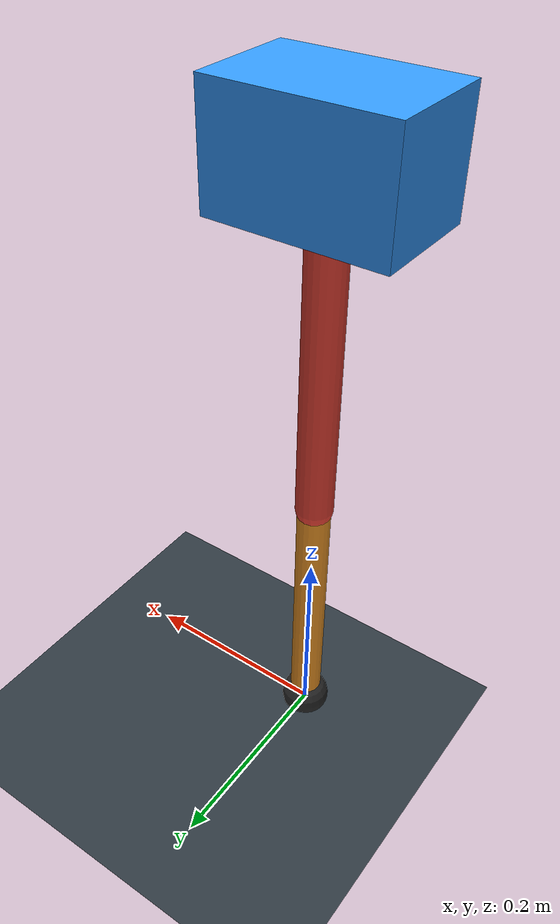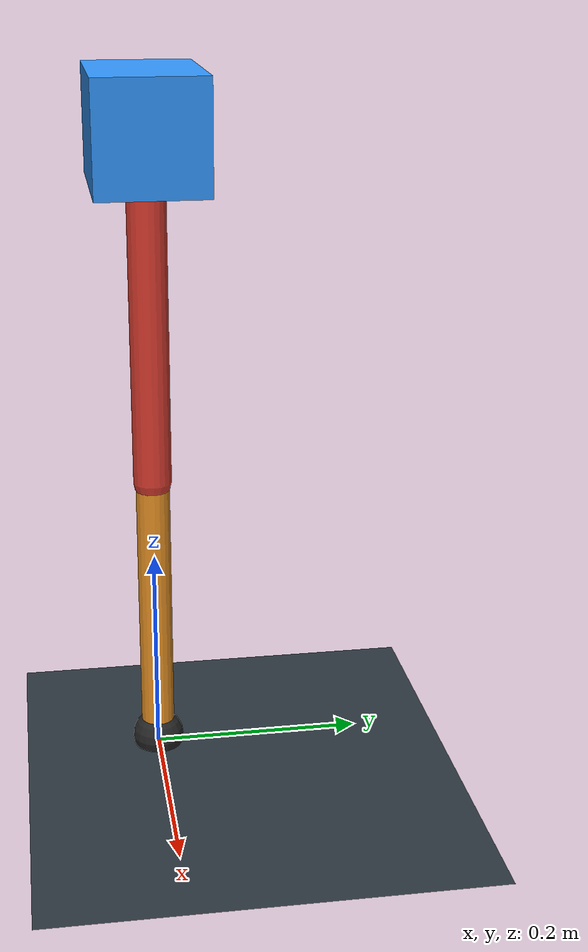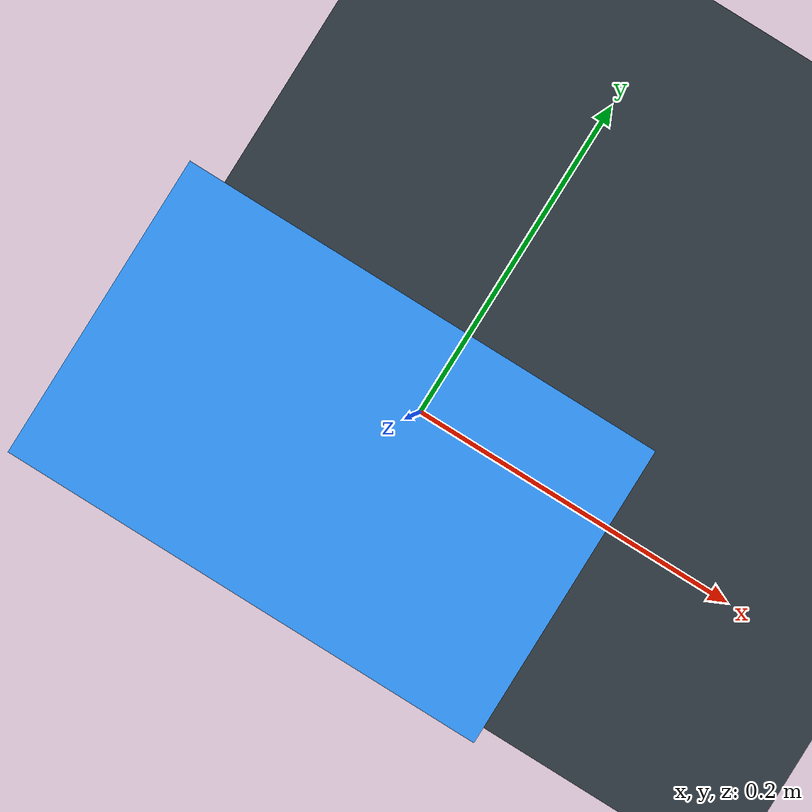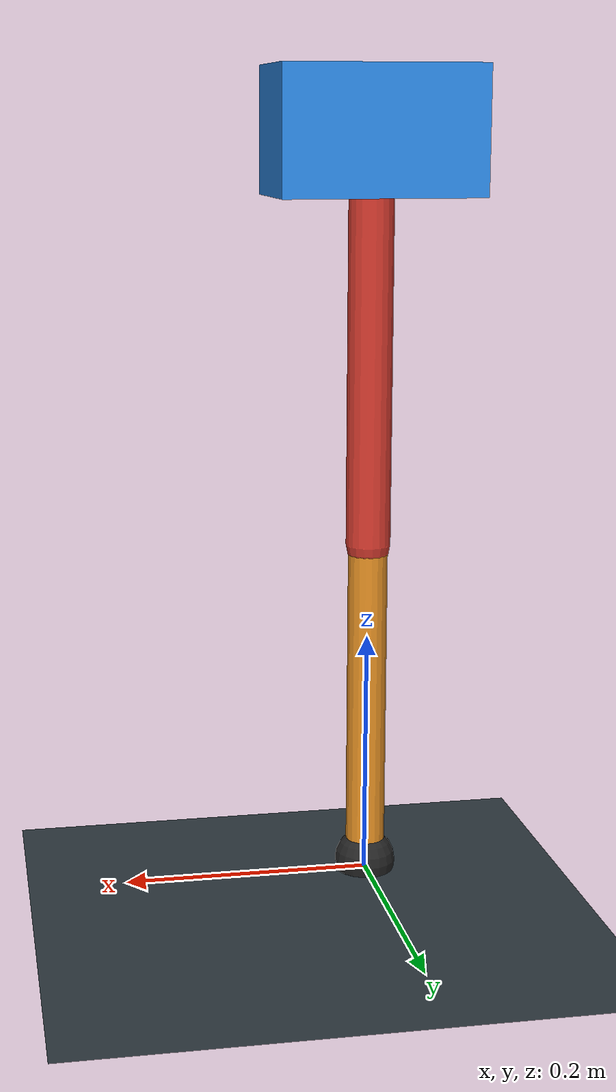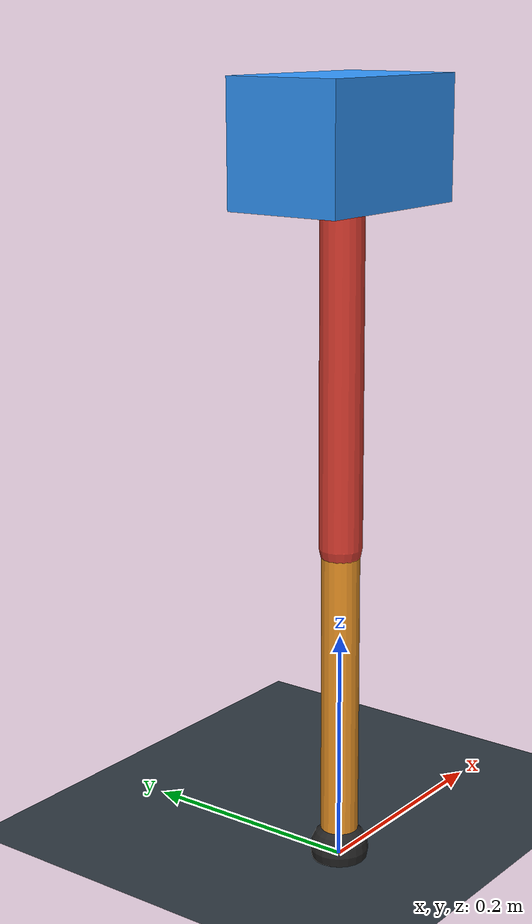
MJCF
<mujoco model="single_axis_two_bar">
  <compiler angle="radian" inertiafromgeom="true"/>
  <option timestep="0.001" integrator="implicitfast" gravity="0 0 -9.81"/>
  <default>
    <joint damping="0.08"/>
    <geom friction="1.2 0.01 0.0001" condim="3"/>
  </default>
  <worldbody>
    <geom name="floor" type="plane" size="5 5 0.1" rgba="0.18 0.22 0.25 1"/>
    <body name="carriage" pos="0 0 0.6053846838318411">
      <joint name="pole_slide" type="slide" axis="0 0 1"/>
      <geom name="payload" type="box" size="0.08 0.05 0.05" mass="3.1911846512367403" rgba="0.2 0.6 1 1"/>
      <body name="thigh" pos="0 0 0">
        <joint name="hip" type="hinge" axis="0 1 0"/>
        <geom name="thigh_link" type="capsule" fromto="0 0 0 0 0 -0.32821282771950283" size="0.018" mass="0.23385597670002206" rgba="0.9 0.25 0.2 1"/>
        <body name="shank" pos="0 0 -0.32821282771950283">
          <joint name="knee" type="hinge" axis="0 1 0"/>
          <geom name="shank_link" type="capsule" fromto="0 0 0 0 0 -0.27012189788033336" size="0.016" mass="0.19246542158570046" rgba="0.95 0.6 0.15 1"/>
          <geom name="foot" type="sphere" pos="0 0 -0.27012189788033336" size="0.025" mass="0.03" rgba="0.15 0.15 0.15 1"/>
          <site name="toe" pos="0 0 -0.27012189788033336" size="0.008"/>
        </body>
      </body>
    </body>
  </worldbody>
  <actuator>
    <motor name="hip_motor" joint="hip" ctrlrange="-36.28301544446689 36.28301544446689"/>
    <motor name="knee_motor" joint="knee" ctrlrange="-155.32782283437183 155.32782283437183"/>
  </actuator>
</mujoco>
